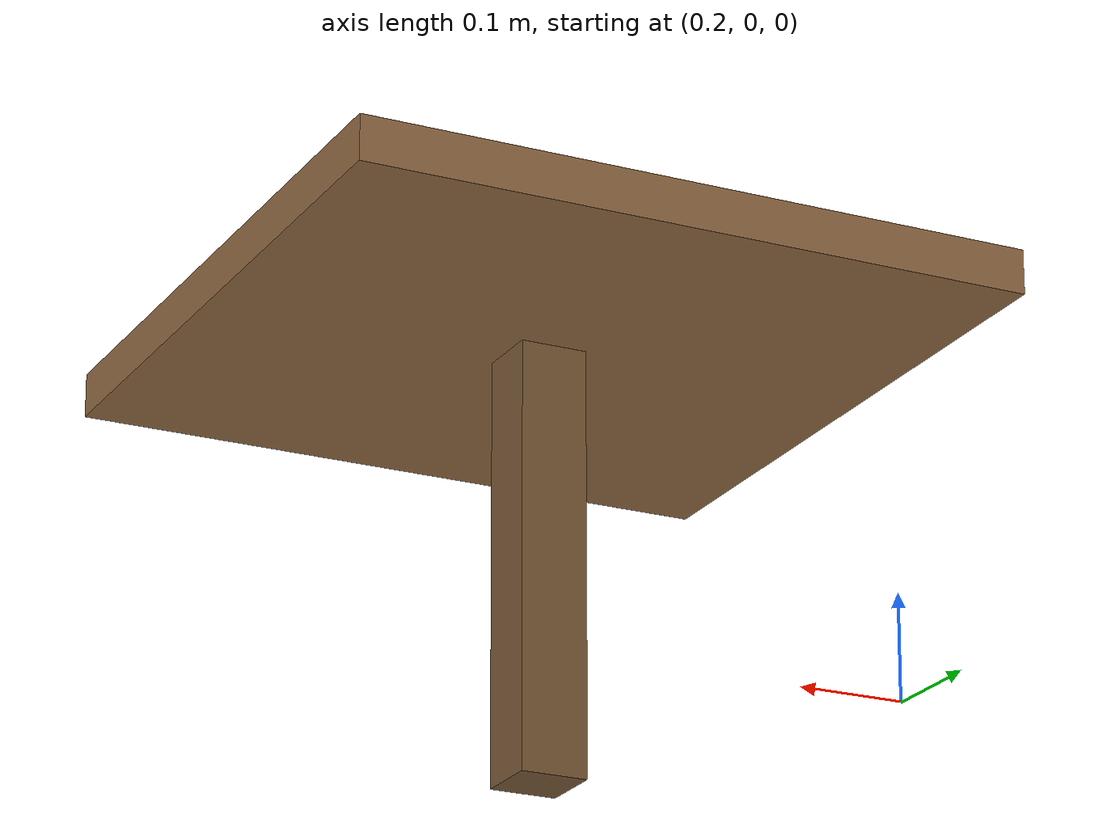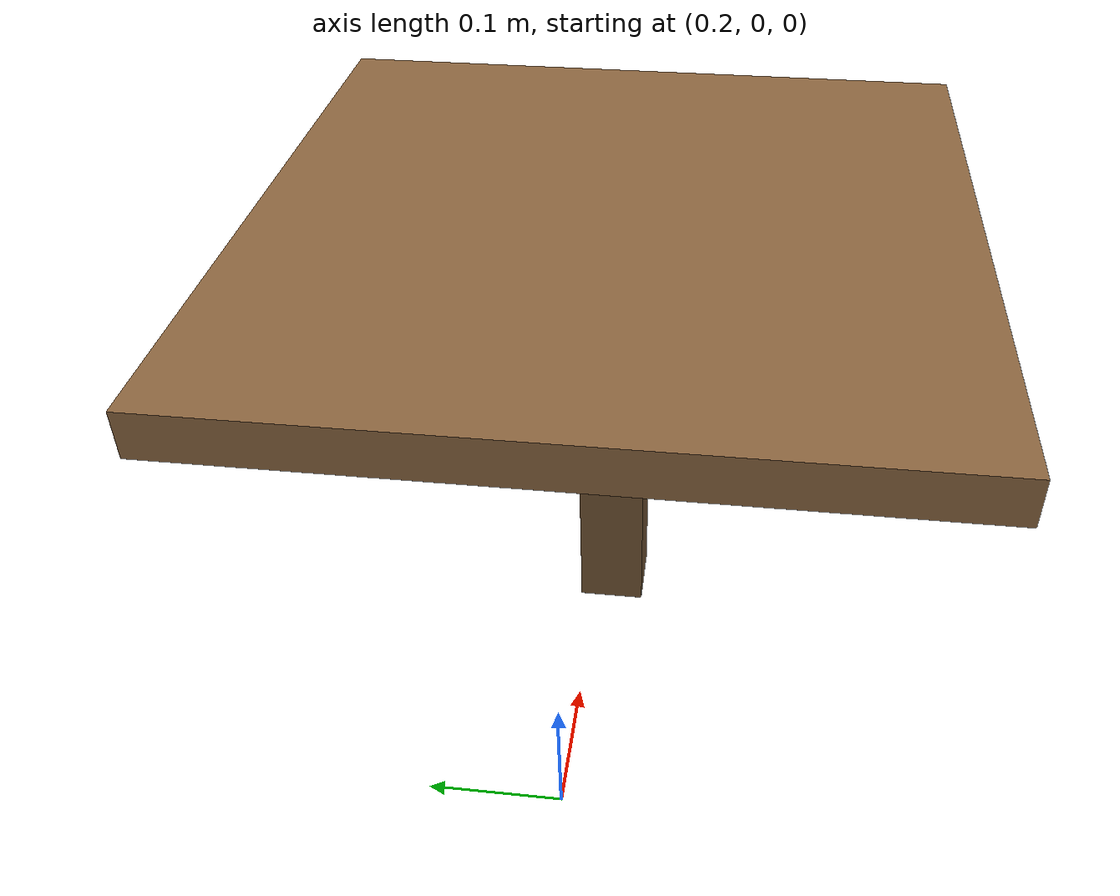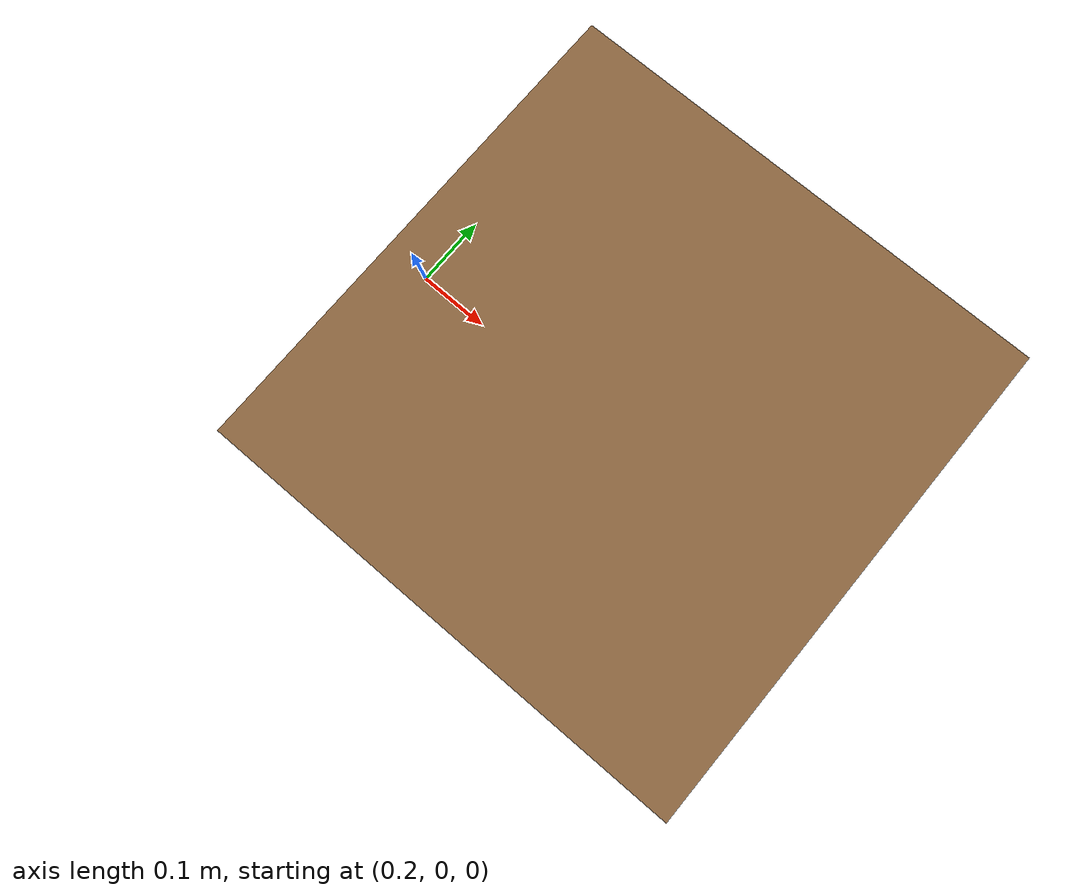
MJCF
<mujoco model="table_worldbody">
  <worldbody>
    <!-- Simple table for visualization. -->
    <!-- NOTE: table_top is centered at z=0.28 with half-height 0.02,
         so its top support surface is z=0.30. compsim should use that
         support plane height when this scene is loaded. -->
    <body name="table" pos="0 0 0">
      <!-- Top: thickness 0.04, top surface at z=0.30 -->
      <geom name="table_top" type="box" size="0.3 0.3 0.02" pos="0.55 0.00 0.28"
            rgba="0.55 0.40 0.25 1" contype="0" conaffinity="0"/>
      <geom name="table_leg_fl" type="box" size="0.03 0.03 0.20" pos="0.55 0.00 0.08"
            rgba="0.45 0.33 0.20 1" contype="0" conaffinity="0"/>

    </body>
  </worldbody>
</mujoco>
